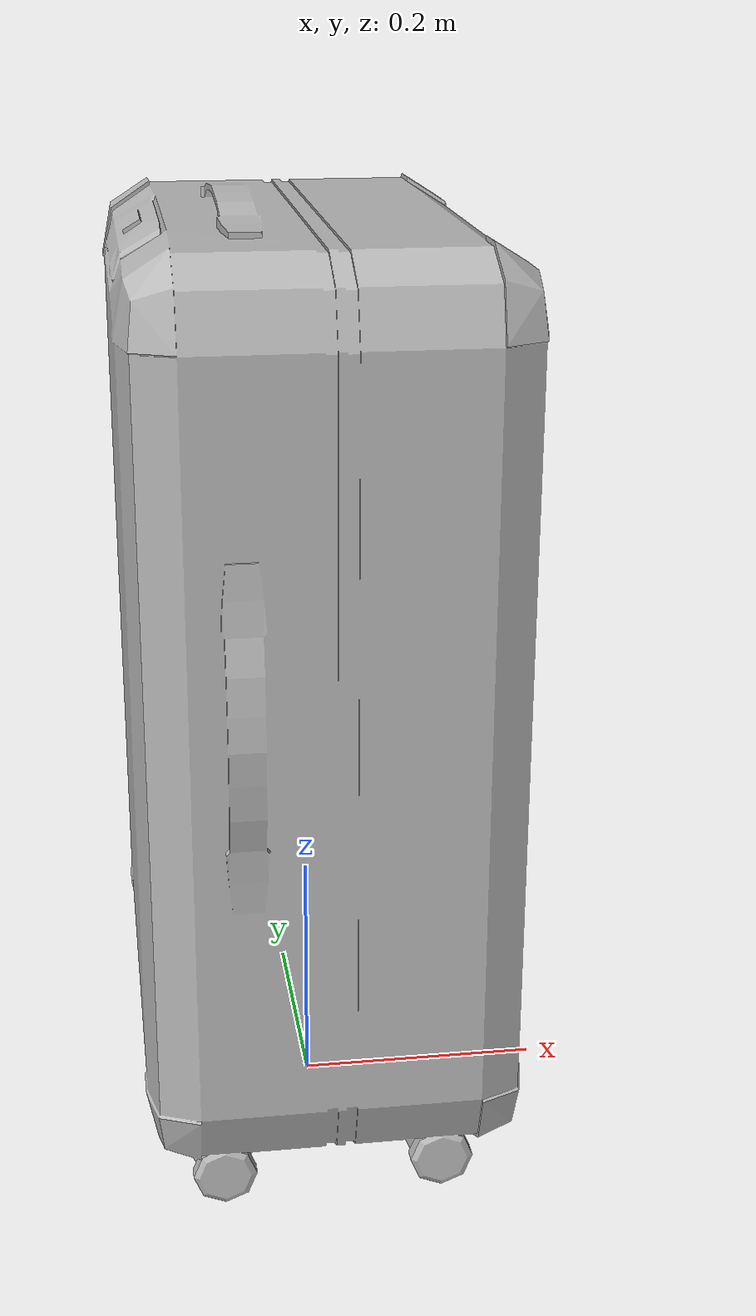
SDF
<?xml version='1.0' encoding='utf-8'?>
<sdf version="1.6">
  <model name="Suitcase1">
   <static>true</static>
    <link name="body">
      <pose>0 0 0 0 0 0</pose>

      <visual name="visual">
        <geometry>
          <mesh>
            <uri>model://Suitcase1/meshes/Suitcase1.obj</uri>
          </mesh>
        </geometry>
      </visual>

      <collision name="collision">
        <geometry>
          <mesh>
            <uri>model://Suitcase1/meshes/Suitcase1_Col.obj</uri>
          </mesh>
        </geometry>
      </collision>

    </link>
  </model>
</sdf>
